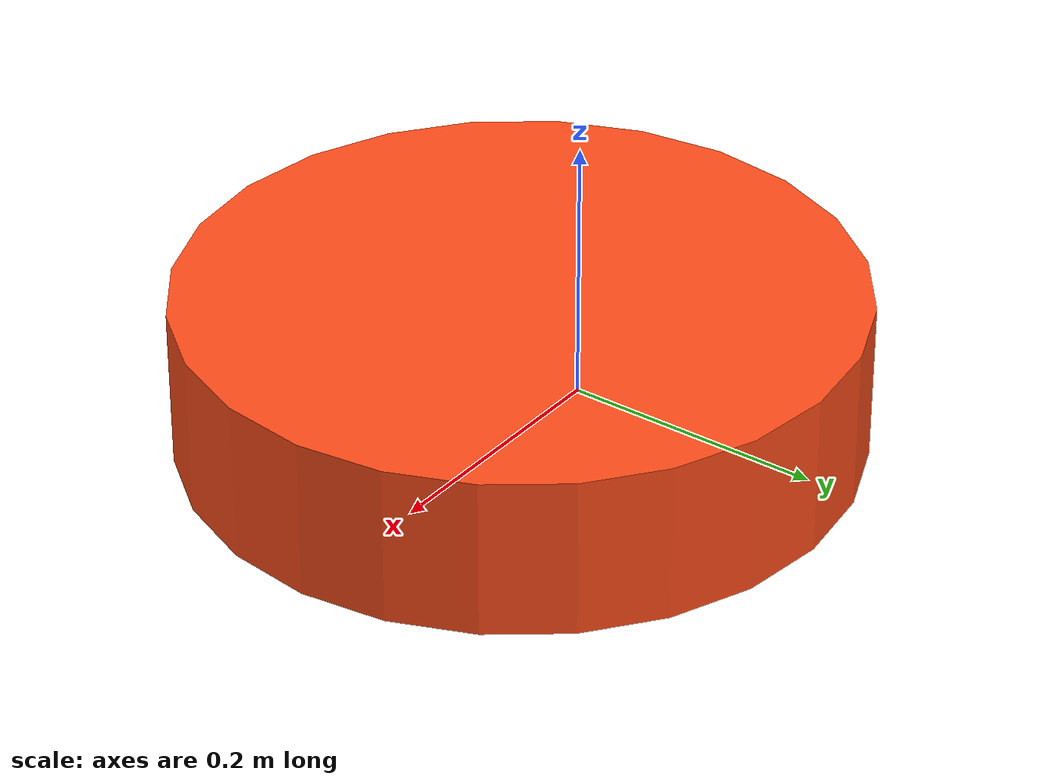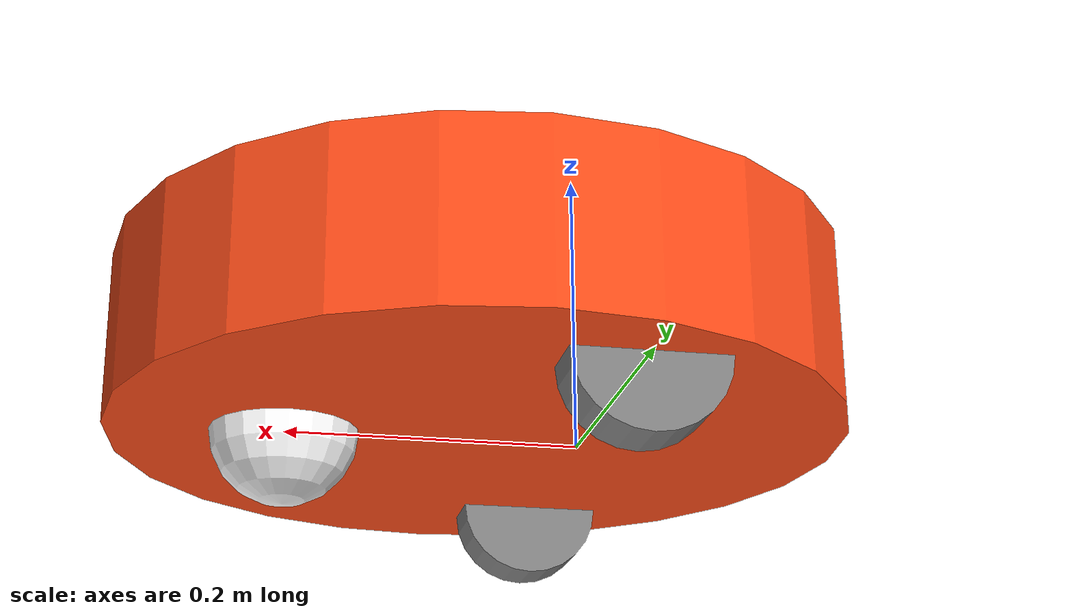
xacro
<?xml version="1.0"?>
<robot xmlns:xacro="http://www.ros.org/wiki/xacro">
    <xacro:include filename="inertial_macros.xacro"/>

    <!-- Colors -->
    <material name="orange">
        <color rgba="1 0.3 0.1 1"/>
    </material>

    <material name="gray">
        <color rgba="0.5 0.5 0.5 1"/>
    </material>

    <material name="white">
        <color rgba="1 1 1 1"/>
    </material>

    <material name="black">
        <color rgba="0 0 0 1"/>
    </material>

    <!-- Base Link -->
    <link name="base_link">
    </link>

    <!-- Base Footprint Link -->
    <joint name="base_footprint_joint" type="fixed">
        <parent link="base_link"/>
        <child link="base_footprint"/>
        <origin xyz="0 0 0" rpy="0 0 0"/>
    </joint>

    <link name="base_footprint">
    </link>

    <!-- Chassis -->
    <joint name="chassis_joint" type="fixed">
        <parent link="base_link"/>
        <child link="chassis"/>
        <origin xyz="-0.1 0 0"/>
    </joint>

    <link name="chassis">
        <visual>
            <origin xyz="0.17 0 0.06"/>
            <geometry>
                <cylinder radius="0.25" length="0.12"/>
            </geometry>
            <material name="orange"/>
        </visual>
        <collision>
            <origin xyz="0.17 0 0.06"/>
            <geometry>
                <cylinder radius="0.25" length="0.12"/>
            </geometry>
        </collision>
        <xacro:inertial_box mass="0.5" x="0.3" y="0.3" z="0.15">
            <origin xyz="0.15 0 0.075" rpy="0 0 0"/>
        </xacro:inertial_box>
    </link>

    <gazebo reference="chassis">
        <material>Gazebo/Orange</material>
    </gazebo>

    <!-- Left Wheel -->
    <joint name="left_wheel_joint" type="continuous">
        <parent link="base_link"/>
        <child link="left_wheel"/>
        <origin xyz="0 0.175 0" rpy="-${pi/2} 0 0" />
        <axis xyz="0 0 1"/>
    </joint>

    <link name="left_wheel">
        <visual>
            <geometry>
                <cylinder radius="0.05" length="0.04"/>
            </geometry>
            <material name="gray"/>
        </visual>
        <collision>
            <geometry>
                <sphere radius="0.05"/>
            </geometry>
        </collision>
        <xacro:inertial_cylinder mass="0.1" length="0.04" radius="0.05">
            <origin xyz="0 0 0" rpy="0 0 0"/>
        </xacro:inertial_cylinder>
    </link>

    <gazebo reference="left_wheel">
        <material>Gazebo/Gray</material>
    </gazebo>

    <!-- Right Wheel -->
    <joint name="right_wheel_joint" type="continuous">
        <parent link="base_link"/>
        <child link="right_wheel"/>
        <origin xyz="0 -0.175 0" rpy="${pi/2} 0 0" />
        <axis xyz="0 0 -1"/>
    </joint>

    <link name="right_wheel">
        <visual>
            <geometry>
                <cylinder radius="0.05" length="0.04"/>
            </geometry>
            <material name="gray"/>
        </visual>
        <collision>
            <geometry>
                <sphere radius="0.05"/>
            </geometry>
        </collision>
        <xacro:inertial_cylinder mass="0.1" length="0.04" radius="0.05">
            <origin xyz="0 0 0" rpy="0 0 0"/>
        </xacro:inertial_cylinder>
    </link>

    <gazebo reference="right_wheel">
        <material>Gazebo/Gray</material>
    </gazebo>

    <!-- Caster Wheel -->
    <joint name="caster_wheel_joint" type="fixed">
        <parent link="chassis"/>
        <child link="caster_wheel"/>
        <origin xyz="0.3 0 0"/>
    </joint>

    <link name="caster_wheel">
        <visual>
            <geometry>
                <sphere radius="0.05"/>
            </geometry>
            <material name="white"/>
        </visual>
        <collision>
            <geometry>
                <sphere radius="0.05"/>
            </geometry>
        </collision>
        <xacro:inertial_sphere mass="0.1" radius="0.05">
            <origin xyz="0 0 0" rpy="0 0 0"/>
        </xacro:inertial_sphere>
    </link>

    <gazebo reference="caster_wheel">
        <material>Gazebo/White</material>
        <mu1 value="0.001"/>
        <mu2 value="0.001"/>
    </gazebo>
</robot>

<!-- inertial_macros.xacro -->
<robot xmlns:xacro="http://www.ros.org/wiki/xacro">
    <xacro:macro name="inertial_sphere" params="mass radius *origin">
        <inertial>
            <xacro:insert_block name="origin"/>
            <mass value="${mass}" />
            <inertia ixx="${(2/5) * mass * (radius*radius)}" ixy="0.0" ixz="0.0"
                    iyy="${(2/5) * mass * (radius*radius)}" iyz="0.0"
                    izz="${(2/5) * mass * (radius*radius)}" />
        </inertial>
    </xacro:macro>

    <xacro:macro name="inertial_box" params="mass x y z *origin">
        <inertial>
            <xacro:insert_block name="origin"/>
            <mass value="${mass}" />
            <inertia ixx="${(1/12) * mass * (y*y+z*z)}" ixy="0.0" ixz="0.0"
                    iyy="${(1/12) * mass * (x*x+z*z)}" iyz="0.0"
                    izz="${(1/12) * mass * (x*x+y*y)}" />
        </inertial>
    </xacro:macro>

    <xacro:macro name="inertial_cylinder" params="mass length radius *origin">
        <inertial>
            <xacro:insert_block name="origin"/>
            <mass value="${mass}" />
            <inertia ixx="${(1/12) * mass * (3*radius*radius + length*length)}" ixy="0.0" ixz="0.0"
                    iyy="${(1/12) * mass * (3*radius*radius + length*length)}" iyz="0.0"
                    izz="${(1/2) * mass * (radius*radius)}" />
        </inertial>
    </xacro:macro>
</robot>
